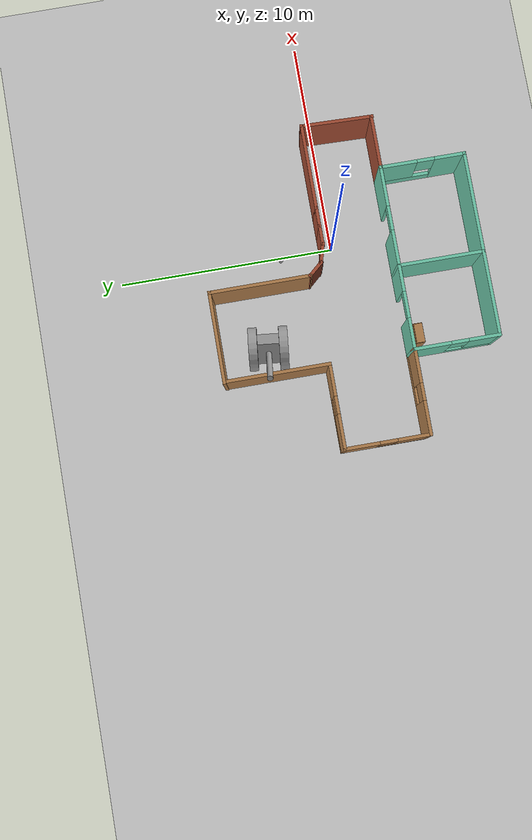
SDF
<sdf version="1.6">
 <world name="default">
  <model name="ground_plane">
   <static>1</static>
   <link name="link">
    <collision name="collision">
     <geometry><plane><normal>0 0 1</normal><size>100 100</size></plane></geometry>
     <surface><friction><ode><mu>100</mu><mu2>50</mu2></ode></friction></surface>
    </collision>
    <visual name="visual">
     <cast_shadows>0</cast_shadows>
     <geometry><plane><normal>0 0 1</normal><size>100 100</size></plane></geometry>
     <material>
      <script><uri>file://media/materials/scripts/gazebo.material</uri><name>Gazebo/Grey</name></script>
     </material>
    </visual>
   </link>
  </model>
  <model name="Building">
   <pose>-2.08469 -0.29841 0 0 -0 0</pose>
   <link name="Wall_1">
    <collision name="Wall_1_Collision">
     <geometry><box><size>4.90441 0.15 2.5</size></box></geometry>
     <pose>0 0 1.25 0 -0 0</pose>
    </collision>
    <visual name="Wall_1_Visual">
     <pose>0 0 1.25 0 -0 0</pose>
     <geometry><box><size>4.90441 0.15 2.5</size></box></geometry>
     <material>
      <script><uri>file://media/materials/scripts/gazebo.material</uri><name>Gazebo/Wood</name></script>
      <ambient>1 1 1 1</ambient>
     </material>
     <meta><layer>0</layer></meta>
    </visual>
    <pose>-3.55458 3.85 0 0 -0 1.5708</pose>
   </link>
   <link name="Wall_10">
    <collision name="Wall_10_Collision">
     <geometry><box><size>1 0.15 2.5</size></box></geometry>
     <pose>0 0 1.25 0 -0 0</pose>
    </collision>
    <visual name="Wall_10_Visual">
     <pose>0 0 1.25 0 -0 0</pose>
     <geometry><box><size>1 0.15 2.5</size></box></geometry>
     <material>
      <script><uri>file://media/materials/scripts/gazebo.material</uri><name>Gazebo/Bricks</name></script>
      <ambient>1 1 1 1</ambient>
     </material>
     <meta><layer>0</layer></meta>
    </visual>
    <pose>1.44206 0.937799 0 0 0 -0.261799</pose>
   </link>
   <link name="Wall_11">
    <collision name="Wall_11_Collision">
     <geometry><box><size>1 0.15 2.5</size></box></geometry>
     <pose>0 0 1.25 0 -0 0</pose>
    </collision>
    <visual name="Wall_11_Visual">
     <pose>0 0 1.25 0 -0 0</pose>
     <geometry><box><size>1 0.15 2.5</size></box></geometry>
     <material>
      <script><uri>file://media/materials/scripts/gazebo.material</uri><name>Gazebo/Bricks</name></script>
      <ambient>1 1 1 1</ambient>
     </material>
     <meta><layer>0</layer></meta>
    </visual>
    <pose>2.27757 0.827801 0 0 -0 0</pose>
   </link>
   <link name="Wall_12">
    <collision name="Wall_12_Collision">
     <geometry><box><size>1 0.15 2.5</size></box></geometry>
     <pose>0 0 1.25 0 -0 0</pose>
    </collision>
    <visual name="Wall_12_Visual">
     <pose>0 0 1.25 0 -0 0</pose>
     <geometry><box><size>1 0.15 2.5</size></box></geometry>
     <material>
      <script><uri>file://media/materials/scripts/gazebo.material</uri><name>Gazebo/Bricks</name></script>
      <ambient>1 1 1 1</ambient>
     </material>
     <meta><layer>0</layer></meta>
    </visual>
    <pose>3.12757 0.827801 0 0 -0 0</pose>
   </link>
   <link name="Wall_14">
    <pose>-5.47959 1.4728 0 0 -0 3.14159</pose>
    <visual name="Wall_14_Visual_0">
     <pose>-1.23073 0 1.25 0 -0 0</pose>
     <geometry><box><size>1.53853 0.15 2.5</size></box></geometry>
     <material>
      <script><uri>file://media/materials/scripts/gazebo.material</uri><name>Gazebo/Wood</name></script>
      <ambient>1 1 1 1</ambient>
     </material>
     <meta><layer>0</layer></meta>
    </visual>
    <collision name="Wall_14_Collision_0">
     <geometry><box><size>1.53853 0.15 2.5</size></box></geometry>
     <pose>-1.23073 0 1.25 0 -0 0</pose>
    </collision>
    <visual name="Wall_14_Visual_1">
     <pose>0.769266 0 0.25 0 -0 0</pose>
     <geometry><box><size>2.46147 0.15 0.5</size></box></geometry>
     <material>
      <script><uri>file://media/materials/scripts/gazebo.material</uri><name>Gazebo/Wood</name></script>
      <ambient>1 1 1 1</ambient>
     </material>
     <meta><layer>0</layer></meta>
    </visual>
    <collision name="Wall_14_Collision_1">
     <geometry><box><size>2.46147 0.15 0.5</size></box></geometry>
     <pose>0.769266 0 0.25 0 -0 0</pose>
    </collision>
    <visual name="Wall_14_Visual_2">
     <pose>1.16927 0 1.5 0 -0 0</pose>
     <geometry><box><size>1.66147 0.15 2</size></box></geometry>
     <material>
      <script><uri>file://media/materials/scripts/gazebo.material</uri><name>Gazebo/Wood</name></script>
      <ambient>1 1 1 1</ambient>
     </material>
     <meta><layer>0</layer></meta>
    </visual>
    <collision name="Wall_14_Collision_2">
     <geometry><box><size>1.66147 0.15 2</size></box></geometry>
     <pose>1.16927 0 1.5 0 -0 0</pose>
    </collision>
    <visual name="Wall_14_Visual_3">
     <pose>-0.061469 0 1.9 0 -0 0</pose>
     <geometry><box><size>0.8 0.15 1.2</size></box></geometry>
     <material>
      <script><uri>file://media/materials/scripts/gazebo.material</uri><name>Gazebo/Wood</name></script>
      <ambient>1 1 1 1</ambient>
     </material>
     <meta><layer>0</layer></meta>
    </visual>
    <collision name="Wall_14_Collision_3">
     <geometry><box><size>0.8 0.15 1.2</size></box></geometry>
     <pose>-0.061469 0 1.9 0 -0 0</pose>
    </collision>
   </link>
   <link name="Wall_15">
    <pose>-7.40458 -0.452203 0 0 0 -1.5708</pose>
    <visual name="Wall_15_Visual_0">
     <pose>-1.17785 0 1.25 0 -0 0</pose>
     <geometry><box><size>1.6443 0.15 2.5</size></box></geometry>
     <material>
      <script><uri>file://media/materials/scripts/gazebo.material</uri><name>Gazebo/Wood</name></script>
      <ambient>1 1 1 1</ambient>
     </material>
     <meta><layer>0</layer></meta>
    </visual>
    <collision name="Wall_15_Collision_0">
     <geometry><box><size>1.6443 0.15 2.5</size></box></geometry>
     <pose>-1.17785 0 1.25 0 -0 0</pose>
    </collision>
    <visual name="Wall_15_Visual_1">
     <pose>0.82215 0 0.25 0 -0 0</pose>
     <geometry><box><size>2.3557 0.15 0.5</size></box></geometry>
     <material>
      <script><uri>file://media/materials/scripts/gazebo.material</uri><name>Gazebo/Wood</name></script>
      <ambient>1 1 1 1</ambient>
     </material>
     <meta><layer>0</layer></meta>
    </visual>
    <collision name="Wall_15_Collision_1">
     <geometry><box><size>2.3557 0.15 0.5</size></box></geometry>
     <pose>0.82215 0 0.25 0 -0 0</pose>
    </collision>
    <visual name="Wall_15_Visual_2">
     <pose>1.22215 0 1.5 0 -0 0</pose>
     <geometry><box><size>1.5557 0.15 2</size></box></geometry>
     <material>
      <script><uri>file://media/materials/scripts/gazebo.material</uri><name>Gazebo/Wood</name></script>
      <ambient>1 1 1 1</ambient>
     </material>
     <meta><layer>0</layer></meta>
    </visual>
    <collision name="Wall_15_Collision_2">
     <geometry><box><size>1.5557 0.15 2</size></box></geometry>
     <pose>1.22215 0 1.5 0 -0 0</pose>
    </collision>
    <visual name="Wall_15_Visual_3">
     <pose>0.044299 0 1.9 0 -0 0</pose>
     <geometry><box><size>0.8 0.15 1.2</size></box></geometry>
     <material>
      <script><uri>file://media/materials/scripts/gazebo.material</uri><name>Gazebo/Wood</name></script>
      <ambient>1 1 1 1</ambient>
     </material>
     <meta><layer>0</layer></meta>
    </visual>
    <collision name="Wall_15_Collision_3">
     <geometry><box><size>0.8 0.15 1.2</size></box></geometry>
     <pose>0.044299 0 1.9 0 -0 0</pose>
    </collision>
   </link>
   <link name="Wall_17">
    <pose>-5.47959 -2.3772 0 0 -0 0</pose>
    <visual name="Wall_17_Visual_0">
     <pose>-1.20425 0 1.25 0 -0 0</pose>
     <geometry><box><size>1.59151 0.15 2.5</size></box></geometry>
     <material>
      <script><uri>file://media/materials/scripts/gazebo.material</uri><name>Gazebo/Wood</name></script>
      <ambient>1 1 1 1</ambient>
     </material>
     <meta><layer>0</layer></meta>
    </visual>
    <collision name="Wall_17_Collision_0">
     <geometry><box><size>1.59151 0.15 2.5</size></box></geometry>
     <pose>-1.20425 0 1.25 0 -0 0</pose>
    </collision>
    <visual name="Wall_17_Visual_1">
     <pose>0.795754 0 0.25 0 -0 0</pose>
     <geometry><box><size>2.40849 0.15 0.5</size></box></geometry>
     <material>
      <script><uri>file://media/materials/scripts/gazebo.material</uri><name>Gazebo/Wood</name></script>
      <ambient>1 1 1 1</ambient>
     </material>
     <meta><layer>0</layer></meta>
    </visual>
    <collision name="Wall_17_Collision_1">
     <geometry><box><size>2.40849 0.15 0.5</size></box></geometry>
     <pose>0.795754 0 0.25 0 -0 0</pose>
    </collision>
    <visual name="Wall_17_Visual_2">
     <pose>1.19575 0 1.5 0 -0 0</pose>
     <geometry><box><size>1.60849 0.15 2</size></box></geometry>
     <material>
      <script><uri>file://media/materials/scripts/gazebo.material</uri><name>Gazebo/Wood</name></script>
      <ambient>1 1 1 1</ambient>
     </material>
     <meta><layer>0</layer></meta>
    </visual>
    <collision name="Wall_17_Collision_2">
     <geometry><box><size>1.60849 0.15 2</size></box></geometry>
     <pose>1.19575 0 1.5 0 -0 0</pose>
    </collision>
    <visual name="Wall_17_Visual_3">
     <pose>-0.008492 0 1.9 0 -0 0</pose>
     <geometry><box><size>0.8 0.15 1.2</size></box></geometry>
     <material>
      <script><uri>file://media/materials/scripts/gazebo.material</uri><name>Gazebo/Wood</name></script>
      <ambient>1 1 1 1</ambient>
     </material>
     <meta><layer>0</layer></meta>
    </visual>
    <collision name="Wall_17_Collision_3">
     <geometry><box><size>0.8 0.15 1.2</size></box></geometry>
     <pose>-0.008492 0 1.9 0 -0 0</pose>
    </collision>
   </link>
   <link name="Wall_19">
    <pose>-3.55458 -4.3022 0 0 0 -1.5708</pose>
    <visual name="Wall_19_Visual_0">
     <pose>-1.13522 0 1.25 0 -0 0</pose>
     <geometry><box><size>1.72956 0.15 2.5</size></box></geometry>
     <material>
      <script><uri>file://media/materials/scripts/gazebo.material</uri><name>Gazebo/Grey</name></script>
      <ambient>0.435294 0.796078 0.67451 1</ambient>
     </material>
     <meta><layer>0</layer></meta>
    </visual>
    <collision name="Wall_19_Collision_0">
     <geometry><box><size>1.72956 0.15 2.5</size></box></geometry>
     <pose>-1.13522 0 1.25 0 -0 0</pose>
    </collision>
    <visual name="Wall_19_Visual_1">
     <pose>0.864782 0 0.25 0 -0 0</pose>
     <geometry><box><size>2.27044 0.15 0.5</size></box></geometry>
     <material>
      <script><uri>file://media/materials/scripts/gazebo.material</uri><name>Gazebo/Grey</name></script>
      <ambient>0.435294 0.796078 0.67451 1</ambient>
     </material>
     <meta><layer>0</layer></meta>
    </visual>
    <collision name="Wall_19_Collision_1">
     <geometry><box><size>2.27044 0.15 0.5</size></box></geometry>
     <pose>0.864782 0 0.25 0 -0 0</pose>
    </collision>
    <visual name="Wall_19_Visual_2">
     <pose>1.26478 0 1.5 0 -0 0</pose>
     <geometry><box><size>1.47044 0.15 2</size></box></geometry>
     <material>
      <script><uri>file://media/materials/scripts/gazebo.material</uri><name>Gazebo/Grey</name></script>
      <ambient>0.435294 0.796078 0.67451 1</ambient>
     </material>
     <meta><layer>0</layer></meta>
    </visual>
    <collision name="Wall_19_Collision_2">
     <geometry><box><size>1.47044 0.15 2</size></box></geometry>
     <pose>1.26478 0 1.5 0 -0 0</pose>
    </collision>
    <visual name="Wall_19_Visual_3">
     <pose>0.129563 0 1.9 0 -0 0</pose>
     <geometry><box><size>0.8 0.15 1.2</size></box></geometry>
     <material>
      <script><uri>file://media/materials/scripts/gazebo.material</uri><name>Gazebo/Grey</name></script>
      <ambient>0.435294 0.796078 0.67451 1</ambient>
     </material>
     <meta><layer>0</layer></meta>
    </visual>
    <collision name="Wall_19_Collision_3">
     <geometry><box><size>0.8 0.15 1.2</size></box></geometry>
     <pose>0.129563 0 1.9 0 -0 0</pose>
    </collision>
   </link>
   <link name="Wall_20">
    <collision name="Wall_20_Collision">
     <geometry><box><size>4 0.15 2.5</size></box></geometry>
     <pose>0 0 1.25 0 -0 0</pose>
    </collision>
    <visual name="Wall_20_Visual">
     <pose>0 0 1.25 0 -0 0</pose>
     <geometry><box><size>4 0.15 2.5</size></box></geometry>
     <material>
      <script><uri>file://media/materials/scripts/gazebo.material</uri><name>Gazebo/Grey</name></script>
      <ambient>0.435294 0.796078 0.67451 1</ambient>
     </material>
     <meta><layer>0</layer></meta>
    </visual>
    <pose>-1.62959 -6.2272 0 0 -0 0</pose>
   </link>
   <link name="Wall_21">
    <collision name="Wall_21_Collision">
     <geometry><box><size>4 0.15 2.5</size></box></geometry>
     <pose>0 0 1.25 0 -0 0</pose>
    </collision>
    <visual name="Wall_21_Visual">
     <pose>0 0 1.25 0 -0 0</pose>
     <geometry><box><size>4 0.15 2.5</size></box></geometry>
     <material>
      <script><uri>file://media/materials/scripts/gazebo.material</uri><name>Gazebo/Grey</name></script>
      <ambient>0.435294 0.796078 0.67451 1</ambient>
     </material>
     <meta><layer>0</layer></meta>
    </visual>
    <pose>0.295415 -4.3022 0 0 -0 1.5708</pose>
   </link>
   <link name="Wall_23">
    <collision name="Wall_23_Collision">
     <geometry><box><size>4.75 0.15 2.5</size></box></geometry>
     <pose>0 0 1.25 0 -0 0</pose>
    </collision>
    <visual name="Wall_23_Visual">
     <pose>0 0 1.25 0 -0 0</pose>
     <geometry><box><size>4.75 0.15 2.5</size></box></geometry>
     <material>
      <script><uri>file://media/materials/scripts/gazebo.material</uri><name>Gazebo/Grey</name></script>
      <ambient>0.435294 0.796078 0.67451 1</ambient>
     </material>
     <meta><layer>0</layer></meta>
    </visual>
    <pose>2.59542 -6.2272 0 0 -0 0</pose>
   </link>
   <link name="Wall_24">
    <pose>4.89541 -4.3022 0 0 -0 1.5708</pose>
    <visual name="Wall_24_Visual_0">
     <pose>-1.27353 0 1.25 0 -0 0</pose>
     <geometry><box><size>1.45295 0.15 2.5</size></box></geometry>
     <material>
      <script><uri>file://media/materials/scripts/gazebo.material</uri><name>Gazebo/Grey</name></script>
      <ambient>0.435294 0.796078 0.67451 1</ambient>
     </material>
     <meta><layer>0</layer></meta>
    </visual>
    <collision name="Wall_24_Collision_0">
     <geometry><box><size>1.45295 0.15 2.5</size></box></geometry>
     <pose>-1.27353 0 1.25 0 -0 0</pose>
    </collision>
    <visual name="Wall_24_Visual_1">
     <pose>0.726473 0 0.25 0 -0 0</pose>
     <geometry><box><size>2.54705 0.15 0.5</size></box></geometry>
     <material>
      <script><uri>file://media/materials/scripts/gazebo.material</uri><name>Gazebo/Grey</name></script>
      <ambient>0.435294 0.796078 0.67451 1</ambient>
     </material>
     <meta><layer>0</layer></meta>
    </visual>
    <collision name="Wall_24_Collision_1">
     <geometry><box><size>2.54705 0.15 0.5</size></box></geometry>
     <pose>0.726473 0 0.25 0 -0 0</pose>
    </collision>
    <visual name="Wall_24_Visual_2">
     <pose>1.12647 0 1.5 0 -0 0</pose>
     <geometry><box><size>1.74705 0.15 2</size></box></geometry>
     <material>
      <script><uri>file://media/materials/scripts/gazebo.material</uri><name>Gazebo/Grey</name></script>
      <ambient>0.435294 0.796078 0.67451 1</ambient>
     </material>
     <meta><layer>0</layer></meta>
    </visual>
    <collision name="Wall_24_Collision_2">
     <geometry><box><size>1.74705 0.15 2</size></box></geometry>
     <pose>1.12647 0 1.5 0 -0 0</pose>
    </collision>
    <visual name="Wall_24_Visual_3">
     <pose>-0.147053 0 1.9 0 -0 0</pose>
     <geometry><box><size>0.8 0.15 1.2</size></box></geometry>
     <material>
      <script><uri>file://media/materials/scripts/gazebo.material</uri><name>Gazebo/Grey</name></script>
      <ambient>0.435294 0.796078 0.67451 1</ambient>
     </material>
     <meta><layer>0</layer></meta>
    </visual>
    <collision name="Wall_24_Collision_3">
     <geometry><box><size>0.8 0.15 1.2</size></box></geometry>
     <pose>-0.147053 0 1.9 0 -0 0</pose>
    </collision>
   </link>
   <link name="Wall_25">
    <collision name="Wall_25_Collision">
     <geometry><box><size>2.56935 0.15 2.5</size></box></geometry>
     <pose>0 0 1.25 0 -0 0</pose>
    </collision>
    <visual name="Wall_25_Visual">
     <pose>0 0 1.25 0 -0 0</pose>
     <geometry><box><size>2.56935 0.15 2.5</size></box></geometry>
     <material>
      <script><uri>file://media/materials/scripts/gazebo.material</uri><name>Gazebo/Bricks</name></script>
      <ambient>1 1 1 1</ambient>
     </material>
     <meta><layer>0</layer></meta>
    </visual>
    <pose>6.10502 -2.3772 0 0 -0 0</pose>
   </link>
   <link name="Wall_26">
    <collision name="Wall_26_Collision">
     <geometry><box><size>3.3828 0.15 2.5</size></box></geometry>
     <pose>0 0 1.25 0 -0 0</pose>
    </collision>
    <visual name="Wall_26_Visual">
     <pose>0 0 1.25 0 -0 0</pose>
     <geometry><box><size>3.3828 0.15 2.5</size></box></geometry>
     <material>
      <script><uri>file://media/materials/scripts/gazebo.material</uri><name>Gazebo/Bricks</name></script>
      <ambient>1 1 1 1</ambient>
     </material>
     <meta><layer>0</layer></meta>
    </visual>
    <pose>7.3586 -0.788001 0 0 -0 1.54359</pose>
   </link>
   <link name="Wall_27">
    <collision name="Wall_27_Collision">
     <geometry><box><size>0.15 0.15 2.5</size></box></geometry>
     <pose>0 0 1.25 0 -0 0</pose>
    </collision>
    <visual name="Wall_27_Visual">
     <pose>0 0 1.25 0 -0 0</pose>
     <geometry><box><size>0.15 0.15 2.5</size></box></geometry>
     <material>
      <script><uri>file://media/materials/scripts/gazebo.material</uri><name>Gazebo/Grey</name></script>
      <ambient>1 1 1 1</ambient>
     </material>
     <meta><layer>0</layer></meta>
    </visual>
    <pose>7.40257 0.827801 0 0 -0 0</pose>
   </link>
   <link name="Wall_29">
    <collision name="Wall_29_Collision">
     <geometry><box><size>4 0.15 2.5</size></box></geometry>
     <pose>0 0 1.25 0 -0 0</pose>
    </collision>
    <visual name="Wall_29_Visual">
     <pose>0 0 1.25 0 -0 0</pose>
     <geometry><box><size>4 0.15 2.5</size></box></geometry>
     <material>
      <script><uri>file://media/materials/scripts/gazebo.material</uri><name>Gazebo/Bricks</name></script>
      <ambient>1 1 1 1</ambient>
     </material>
     <meta><layer>0</layer></meta>
    </visual>
    <pose>5.47757 0.827801 0 0 -0 0</pose>
   </link>
   <link name="Wall_31">
    <pose>0.670415 -2.3772 0 0 -0 0</pose>
    <visual name="Wall_31_Visual_0">
     <pose>-3.54346 0 1.25 0 -0 0</pose>
     <geometry><box><size>1.51309 0.15 2.5</size></box></geometry>
     <material>
      <script><uri>file://media/materials/scripts/gazebo.material</uri><name>Gazebo/Grey</name></script>
      <ambient>0.435294 0.796078 0.67451 1</ambient>
     </material>
     <meta><layer>0</layer></meta>
    </visual>
    <collision name="Wall_31_Collision_0">
     <geometry><box><size>1.51309 0.15 2.5</size></box></geometry>
     <pose>-3.54346 0 1.25 0 -0 0</pose>
    </collision>
    <visual name="Wall_31_Visual_1">
     <pose>-0.150655 0 1.25 0 -0 0</pose>
     <geometry><box><size>2.84287 0.15 2.5</size></box></geometry>
     <material>
      <script><uri>file://media/materials/scripts/gazebo.material</uri><name>Gazebo/Grey</name></script>
      <ambient>0.435294 0.796078 0.67451 1</ambient>
     </material>
     <meta><layer>0</layer></meta>
    </visual>
    <collision name="Wall_31_Collision_1">
     <geometry><box><size>2.84287 0.15 2.5</size></box></geometry>
     <pose>-0.150655 0 1.25 0 -0 0</pose>
    </collision>
    <visual name="Wall_31_Visual_2">
     <pose>3.34908 0 1.25 0 -0 0</pose>
     <geometry><box><size>1.90185 0.15 2.5</size></box></geometry>
     <material>
      <script><uri>file://media/materials/scripts/gazebo.material</uri><name>Gazebo/Grey</name></script>
      <ambient>0.435294 0.796078 0.67451 1</ambient>
     </material>
     <meta><layer>0</layer></meta>
    </visual>
    <collision name="Wall_31_Collision_2">
     <geometry><box><size>1.90185 0.15 2.5</size></box></geometry>
     <pose>3.34908 0 1.25 0 -0 0</pose>
    </collision>
    <visual name="Wall_31_Visual_3">
     <pose>-2.1795 0 2.25 0 -0 0</pose>
     <geometry><box><size>1.21482 0.15 0.5</size></box></geometry>
     <material>
      <script><uri>file://media/materials/scripts/gazebo.material</uri><name>Gazebo/Grey</name></script>
      <ambient>0.435294 0.796078 0.67451 1</ambient>
     </material>
     <meta><layer>0</layer></meta>
    </visual>
    <collision name="Wall_31_Collision_3">
     <geometry><box><size>1.21482 0.15 0.5</size></box></geometry>
     <pose>-2.1795 0 2.25 0 -0 0</pose>
    </collision>
    <visual name="Wall_31_Visual_4">
     <pose>1.83447 0 2.25 0 -0 0</pose>
     <geometry><box><size>1.12737 0.15 0.5</size></box></geometry>
     <material>
      <script><uri>file://media/materials/scripts/gazebo.material</uri><name>Gazebo/Grey</name></script>
      <ambient>0.435294 0.796078 0.67451 1</ambient>
     </material>
     <meta><layer>0</layer></meta>
    </visual>
    <collision name="Wall_31_Collision_4">
     <geometry><box><size>1.12737 0.15 0.5</size></box></geometry>
     <pose>1.83447 0 2.25 0 -0 0</pose>
    </collision>
   </link>
   <link name="Wall_6">
    <collision name="Wall_6_Collision">
     <geometry><box><size>4.25 0.15 2.5</size></box></geometry>
     <pose>0 0 1.25 0 -0 0</pose>
    </collision>
    <visual name="Wall_6_Visual">
     <pose>0 0 1.25 0 -0 0</pose>
     <geometry><box><size>4.25 0.15 2.5</size></box></geometry>
     <material>
      <script><uri>file://media/materials/scripts/gazebo.material</uri><name>Gazebo/Wood</name></script>
      <ambient>1 1 1 1</ambient>
     </material>
     <meta><layer>0</layer></meta>
    </visual>
    <pose>-1.53119 6.2272 0 0 -0 3.14159</pose>
   </link>
   <link name="Wall_8">
    <collision name="Wall_8_Collision">
     <geometry><box><size>4.75 0.15 2.5</size></box></geometry>
     <pose>0 0 1.25 0 -0 0</pose>
    </collision>
    <visual name="Wall_8_Visual">
     <pose>0 0 1.25 0 -0 0</pose>
     <geometry><box><size>4.75 0.15 2.5</size></box></geometry>
     <material>
      <script><uri>file://media/materials/scripts/gazebo.material</uri><name>Gazebo/Wood</name></script>
      <ambient>1 1 1 1</ambient>
     </material>
     <meta><layer>0</layer></meta>
    </visual>
    <pose>0.518814 3.9272 0 0 0 -1.5708</pose>
   </link>
   <link name="Wall_9">
    <collision name="Wall_9_Collision">
     <geometry><box><size>0.92369 0.15 2.5</size></box></geometry>
     <pose>0 0 1.25 0 -0 0</pose>
    </collision>
    <visual name="Wall_9_Visual">
     <pose>0 0 1.25 0 -0 0</pose>
     <geometry><box><size>0.92369 0.15 2.5</size></box></geometry>
     <material>
      <script><uri>file://media/materials/scripts/gazebo.material</uri><name>Gazebo/Bricks</name></script>
      <ambient>1 1 1 1</ambient>
     </material>
     <meta><layer>0</layer></meta>
    </visual>
    <pose>0.775175 1.3375 0 0 0 -0.846382</pose>
   </link>
   <static>1</static>
  </model>
  <model name="robot_0">
   <link name="link_2">
    <pose>0.001415 0.001415 -0.407495 0 -0 0</pose>
    <inertial>
     <mass>1</mass>
     <inertia>
      <ixx>0.166667</ixx>
      <ixy>0</ixy>
      <ixz>0</ixz>
      <iyy>0.166667</iyy>
      <iyz>0</iyz>
      <izz>0.166667</izz>
     </inertia>
    </inertial>
    <visual name="visual">
     <geometry><box><size>1 1 1</size></box></geometry>
     <material>
      <lighting>1</lighting>
      <script><uri>file://media/materials/scripts/gazebo.material</uri><name>Gazebo/Grey</name></script>
      <shader type="pixel"><normal_map>__default__</normal_map></shader>
      <ambient>0.3 0.3 0.3 1</ambient>
      <diffuse>0.7 0.7 0.7 1</diffuse>
      <specular>0.01 0.01 0.01 1</specular>
      <emissive>0 0 0 1</emissive>
     </material>
    </visual>
    <collision name="collision">
     <geometry><box><size>1 1 1</size></box></geometry>
     <surface>
      <friction>
       <ode><mu>1</mu><mu2>1</mu2><fdir1>0 0 0</fdir1><slip1>0</slip1><slip2>0</slip2></ode>
       <torsional>
        <coefficient>1</coefficient>
        <patch_radius>0</patch_radius>
        <surface_radius>0</surface_radius>
        <use_patch_radius>1</use_patch_radius>
        <ode><slip>0</slip></ode>
       </torsional>
      </friction>
      <bounce><restitution_coefficient>0</restitution_coefficient><threshold>1e+06</threshold></bounce>
      <contact>
       <collide_without_contact>0</collide_without_contact>
       <collide_without_contact_bitmask>1</collide_without_contact_bitmask>
       <collide_bitmask>1</collide_bitmask>
       <ode>
        <soft_cfm>0</soft_cfm>
        <soft_erp>0.2</soft_erp>
        <kp>1e+13</kp>
        <kd>1</kd>
        <max_vel>0.01</max_vel>
        <min_depth>0</min_depth>
       </ode>
       <bullet>
        <split_impulse>1</split_impulse>
        <split_impulse_penetration_threshold>-0.01</split_impulse_penetration_threshold>
        <soft_cfm>0</soft_cfm>
        <soft_erp>0.2</soft_erp>
        <kp>1e+13</kp>
        <kd>1</kd>
       </bullet>
      </contact>
     </surface>
    </collision>
   </link>
   <link name="link_4">
    <pose>0.001415 -0.698682 -0.407495 1.5707 -0 0</pose>
    <inertial>
     <mass>1</mass>
     <inertia><ixx>0.145833</ixx><ixy>0</ixy><ixz>0</ixz><iyy>0.145833</iyy><iyz>0</iyz><izz>0.125</izz></inertia>
    </inertial>
    <visual name="visual">
     <geometry><cylinder><radius>1</radius><length>0.4</length></cylinder></geometry>
     <material>
      <lighting>1</lighting>
      <script><uri>file://media/materials/scripts/gazebo.material</uri><name>Gazebo/Grey</name></script>
      <shader type="pixel"><normal_map>__default__</normal_map></shader>
      <ambient>0.3 0.3 0.3 1</ambient>
      <diffuse>0.7 0.7 0.7 1</diffuse>
      <specular>0.01 0.01 0.01 1</specular>
      <emissive>0 0 0 1</emissive>
     </material>
    </visual>
    <collision name="collision">
     <geometry><cylinder><radius>1</radius><length>0.4</length></cylinder></geometry>
     <surface>
      <friction>
       <ode><mu>1</mu><mu2>1</mu2><fdir1>0 0 0</fdir1><slip1>0</slip1><slip2>0</slip2></ode>
       <torsional>
        <coefficient>1</coefficient>
        <patch_radius>0</patch_radius>
        <surface_radius>0</surface_radius>
        <use_patch_radius>1</use_patch_radius>
        <ode><slip>0</slip></ode>
       </torsional>
      </friction>
      <bounce><restitution_coefficient>0</restitution_coefficient><threshold>1e+06</threshold></bounce>
      <contact>
       <collide_without_contact>0</collide_without_contact>
       <collide_without_contact_bitmask>1</collide_without_contact_bitmask>
       <collide_bitmask>1</collide_bitmask>
       <ode>
        <soft_cfm>0</soft_cfm>
        <soft_erp>0.2</soft_erp>
        <kp>1e+13</kp>
        <kd>1</kd>
        <max_vel>0.01</max_vel>
        <min_depth>0</min_depth>
       </ode>
       <bullet>
        <split_impulse>1</split_impulse>
        <split_impulse_penetration_threshold>-0.01</split_impulse_penetration_threshold>
        <soft_cfm>0</soft_cfm>
        <soft_erp>0.2</soft_erp>
        <kp>1e+13</kp>
        <kd>1</kd>
       </bullet>
      </contact>
     </surface>
    </collision>
   </link>
   <link name="link_4_clone">
    <pose>0.001415 0.701511 -0.407495 1.5707 -0 0</pose>
    <inertial>
     <mass>1</mass>
     <inertia><ixx>0.145833</ixx><ixy>0</ixy><ixz>0</ixz><iyy>0.145833</iyy><iyz>0</iyz><izz>0.125</izz></inertia>
    </inertial>
    <visual name="visual">
     <geometry><cylinder><radius>1</radius><length>0.4</length></cylinder></geometry>
     <material>
      <lighting>1</lighting>
      <script><uri>file://media/materials/scripts/gazebo.material</uri><name>Gazebo/Grey</name></script>
      <shader type="pixel"><normal_map>__default__</normal_map></shader>
      <ambient>0.3 0.3 0.3 1</ambient>
      <diffuse>0.7 0.7 0.7 1</diffuse>
      <specular>0.01 0.01 0.01 1</specular>
      <emissive>0 0 0 1</emissive>
     </material>
    </visual>
    <collision name="collision">
     <geometry><cylinder><radius>1</radius><length>0.4</length></cylinder></geometry>
     <surface>
      <friction>
       <ode><mu>1</mu><mu2>1</mu2><fdir1>0 0 0</fdir1><slip1>0</slip1><slip2>0</slip2></ode>
       <torsional>
        <coefficient>1</coefficient>
        <patch_radius>0</patch_radius>
        <surface_radius>0</surface_radius>
        <use_patch_radius>1</use_patch_radius>
        <ode><slip>0</slip></ode>
       </torsional>
      </friction>
      <bounce><restitution_coefficient>0</restitution_coefficient><threshold>1e+06</threshold></bounce>
      <contact>
       <collide_without_contact>0</collide_without_contact>
       <collide_without_contact_bitmask>1</collide_without_contact_bitmask>
       <collide_bitmask>1</collide_bitmask>
       <ode>
        <soft_cfm>0</soft_cfm>
        <soft_erp>0.2</soft_erp>
        <kp>1e+13</kp>
        <kd>1</kd>
        <max_vel>0.01</max_vel>
        <min_depth>0</min_depth>
       </ode>
       <bullet>
        <split_impulse>1</split_impulse>
        <split_impulse_penetration_threshold>-0.01</split_impulse_penetration_threshold>
        <soft_cfm>0</soft_cfm>
        <soft_erp>0.2</soft_erp>
        <kp>1e+13</kp>
        <kd>1</kd>
       </bullet>
      </contact>
     </surface>
    </collision>
   </link>
   <link name="link_6">
    <pose>-0.004244 -0.004244 1.22248 0 -0 0</pose>
    <inertial>
     <mass>0.149694</mass>
     <inertia>
      <ixx>0.0643321</ixx>
      <ixy>0</ixy>
      <ixz>0</ixz>
      <iyy>0.0643321</iyy>
      <iyz>0</iyz>
      <izz>0.00123941</izz>
     </inertia>
    </inertial>
    <visual name="visual">
     <geometry><cylinder><radius>0.128683</radius><length>2.25996</length></cylinder></geometry>
     <material>
      <lighting>1</lighting>
      <script><uri>file://media/materials/scripts/gazebo.material</uri><name>Gazebo/Grey</name></script>
      <shader type="pixel"/>
      <ambient>0.3 0.3 0.3 1</ambient>
      <diffuse>0.7 0.7 0.7 1</diffuse>
      <specular>0.01 0.01 0.01 1</specular>
      <emissive>0 0 0 1</emissive>
     </material>
    </visual>
    <collision name="collision">
     <geometry><cylinder><radius>0.128683</radius><length>2.25996</length></cylinder></geometry>
     <surface>
      <friction>
       <ode><mu>1</mu><mu2>1</mu2><fdir1>0 0 0</fdir1><slip1>0</slip1><slip2>0</slip2></ode>
       <torsional>
        <coefficient>1</coefficient>
        <patch_radius>0</patch_radius>
        <surface_radius>0</surface_radius>
        <use_patch_radius>1</use_patch_radius>
        <ode><slip>0</slip></ode>
       </torsional>
      </friction>
      <bounce><restitution_coefficient>0</restitution_coefficient><threshold>1e+06</threshold></bounce>
      <contact>
       <collide_without_contact>0</collide_without_contact>
       <collide_without_contact_bitmask>1</collide_without_contact_bitmask>
       <collide_bitmask>1</collide_bitmask>
       <ode>
        <soft_cfm>0</soft_cfm>
        <soft_erp>0.2</soft_erp>
        <kp>1e+13</kp>
        <kd>1</kd>
        <max_vel>0.01</max_vel>
        <min_depth>0</min_depth>
       </ode>
       <bullet>
        <split_impulse>1</split_impulse>
        <split_impulse_penetration_threshold>-0.01</split_impulse_penetration_threshold>
        <soft_cfm>0</soft_cfm>
        <soft_erp>0.2</soft_erp>
        <kp>1e+13</kp>
        <kd>1</kd>
       </bullet>
      </contact>
     </surface>
    </collision>
   </link>
   <joint name="link_2_JOINT_0" type="revolute">
    <parent>link_2</parent>
    <child>link_4</child>
    <axis>
     <xyz>1 0 0</xyz>
     <use_parent_model_frame>0</use_parent_model_frame>
     <limit>
      <lower>-1.79769e+308</lower>
      <upper>1.79769e+308</upper>
      <effort>-1</effort>
      <velocity>-1</velocity>
     </limit>
     <dynamics>
      <spring_reference>0</spring_reference>
      <spring_stiffness>0</spring_stiffness>
      <damping>0</damping>
     </dynamics>
    </axis>
    <physics>
     <ode><limit><cfm>0</cfm><erp>0.2</erp></limit><suspension><cfm>0</cfm><erp>0.2</erp></suspension></ode>
    </physics>
   </joint>
   <joint name="link_2_JOINT_1" type="revolute">
    <parent>link_2</parent>
    <child>link_4_clone</child>
    <axis>
     <xyz>1 0 0</xyz>
     <use_parent_model_frame>0</use_parent_model_frame>
     <limit>
      <lower>-1.79769e+308</lower>
      <upper>1.79769e+308</upper>
      <effort>-1</effort>
      <velocity>-1</velocity>
     </limit>
     <dynamics>
      <spring_reference>0</spring_reference>
      <spring_stiffness>0</spring_stiffness>
      <damping>0</damping>
     </dynamics>
    </axis>
    <physics>
     <ode><limit><cfm>0</cfm><erp>0.2</erp></limit><suspension><cfm>0</cfm><erp>0.2</erp></suspension></ode>
    </physics>
   </joint>
   <joint name="link_2_JOINT_2" type="fixed">
    <parent>link_2</parent>
    <child>link_6</child>
    <pose>0 0 0 0 -0.03 0</pose>
    <physics>
     <ode><limit><cfm>0</cfm><erp>0.2</erp></limit><suspension><cfm>0</cfm><erp>0.2</erp></suspension></ode>
    </physics>
   </joint>
   <static>0</static>
   <pose>-4.51938 3.7511 1.32531 0.000818 -0.64474 -0.106339</pose>
  </model>
  <model name="bookshelf_3">
   <static>1</static>
   <link name="link">
    <inertial><mass>1</mass></inertial>
    <collision name="back">
     <pose>0 0.005 0.6 0 -0 0</pose>
     <geometry><box><size>0.9 0.01 1.2</size></box></geometry>
    </collision>
    <visual name="visual1">
     <pose>0 0.005 0.6 0 -0 0</pose>
     <geometry><box><size>0.9 0.01 1.2</size></box></geometry>
     <material>
      <script><uri>file://media/materials/scripts/gazebo.material</uri><name>Gazebo/Wood</name></script>
     </material>
    </visual>
    <collision name="left_side">
     <pose>0.45 -0.195 0.6 0 -0 0</pose>
     <geometry><box><size>0.02 0.4 1.2</size></box></geometry>
    </collision>
    <visual name="visual2">
     <pose>0.45 -0.195 0.6 0 -0 0</pose>
     <geometry><box><size>0.02 0.4 1.2</size></box></geometry>
     <material>
      <script><uri>file://media/materials/scripts/gazebo.material</uri><name>Gazebo/Wood</name></script>
     </material>
    </visual>
    <collision name="right_side">
     <pose>-0.45 -0.195 0.6 0 -0 0</pose>
     <geometry><box><size>0.02 0.4 1.2</size></box></geometry>
    </collision>
    <visual name="visual3">
     <pose>-0.45 -0.195 0.6 0 -0 0</pose>
     <geometry><box><size>0.02 0.4 1.2</size></box></geometry>
     <material>
      <script><uri>file://media/materials/scripts/gazebo.material</uri><name>Gazebo/Wood</name></script>
     </material>
    </visual>
    <collision name="bottom">
     <pose>0 -0.195 0.03 0 -0 0</pose>
     <geometry><box><size>0.88 0.4 0.06</size></box></geometry>
    </collision>
    <visual name="visual4">
     <pose>0 -0.195 0.03 0 -0 0</pose>
     <geometry><box><size>0.88 0.4 0.06</size></box></geometry>
     <material>
      <script><uri>file://media/materials/scripts/gazebo.material</uri><name>Gazebo/Wood</name></script>
     </material>
    </visual>
    <collision name="top">
     <pose>0 -0.195 1.19 0 -0 0</pose>
     <geometry><box><size>0.88 0.4 0.02</size></box></geometry>
    </collision>
    <visual name="visual5">
     <pose>0 -0.195 1.19 0 -0 0</pose>
     <geometry><box><size>0.88 0.4 0.02</size></box></geometry>
     <material>
      <script><uri>file://media/materials/scripts/gazebo.material</uri><name>Gazebo/Wood</name></script>
     </material>
    </visual>
    <collision name="low_shelf">
     <pose>0 -0.195 0.43 0 -0 0</pose>
     <geometry><box><size>0.88 0.4 0.02</size></box></geometry>
    </collision>
    <visual name="visual6">
     <pose>0 -0.195 0.43 0 -0 0</pose>
     <geometry><box><size>0.88 0.4 0.02</size></box></geometry>
     <material>
      <script><uri>file://media/materials/scripts/gazebo.material</uri><name>Gazebo/Wood</name></script>
     </material>
    </visual>
    <collision name="high_shelf">
     <pose>0 -0.195 0.8 0 -0 0</pose>
     <geometry><box><size>0.88 0.4 0.02</size></box></geometry>
    </collision>
    <visual name="visual7">
     <pose>0 -0.195 0.8 0 -0 0</pose>
     <geometry><box><size>0.88 0.4 0.02</size></box></geometry>
     <material>
      <script><uri>file://media/materials/scripts/gazebo.material</uri><name>Gazebo/Wood</name></script>
     </material>
    </visual>
   </link>
   <pose>-4.77217 -3.01429 0 0 -0 0</pose>
  </model>
  <model name="my_ball">
   <link name="link_0_clone">
    <pose>12.9253 0.75155 0.2 0 -0 0</pose>
    <inertial>
     <mass>1</mass>
     <inertia><ixx>0.1</ixx><ixy>0</ixy><ixz>0</ixz><iyy>0.1</iyy><iyz>0</iyz><izz>0.1</izz></inertia>
    </inertial>
    <visual name="visual">
     <geometry><sphere><radius>0.1</radius></sphere></geometry>
     <material>
      <lighting>1</lighting>
      <script><uri>file://media/materials/scripts/gazebo.material</uri><name>Gazebo/Grey</name></script>
      <shader type="pixel"><normal_map>__default__</normal_map></shader>
      <ambient>0.3 0.3 0.3 1</ambient>
      <diffuse>0.7 0.7 0.7 1</diffuse>
      <specular>0.01 0.01 0.01 1</specular>
      <emissive>0 0 0 1</emissive>
     </material>
    </visual>
    <collision name="collision">
     <geometry><sphere><radius>0.1</radius></sphere></geometry>
     <surface>
      <friction>
       <ode><mu>1</mu><mu2>1</mu2><fdir1>0 0 0</fdir1><slip1>0</slip1><slip2>0</slip2></ode>
       <torsional>
        <coefficient>1</coefficient>
        <patch_radius>0</patch_radius>
        <surface_radius>0</surface_radius>
        <use_patch_radius>1</use_patch_radius>
        <ode><slip>0</slip></ode>
       </torsional>
      </friction>
      <bounce><restitution_coefficient>0</restitution_coefficient><threshold>1e+06</threshold></bounce>
      <contact>
       <collide_without_contact>0</collide_without_contact>
       <collide_without_contact_bitmask>1</collide_without_contact_bitmask>
       <collide_bitmask>1</collide_bitmask>
       <ode>
        <soft_cfm>0</soft_cfm>
        <soft_erp>0.2</soft_erp>
        <kp>1e+13</kp>
        <kd>1</kd>
        <max_vel>0.01</max_vel>
        <min_depth>0</min_depth>
       </ode>
       <bullet>
        <split_impulse>1</split_impulse>
        <split_impulse_penetration_threshold>-0.01</split_impulse_penetration_threshold>
        <soft_cfm>0</soft_cfm>
        <soft_erp>0.2</soft_erp>
        <kp>1e+13</kp>
        <kd>1</kd>
       </bullet>
      </contact>
     </surface>
    </collision>
   </link>
   <link name="link_0_clone_0">
    <pose>-12.9253 -0.75155 -0.2 0 -0 0</pose>
    <inertial>
     <mass>1</mass>
     <inertia><ixx>0.1</ixx><ixy>0</ixy><ixz>0</ixz><iyy>0.1</iyy><iyz>0</iyz><izz>0.1</izz></inertia>
    </inertial>
    <visual name="visual">
     <geometry><sphere><radius>0.1</radius></sphere></geometry>
     <material>
      <lighting>1</lighting>
      <script><uri>file://media/materials/scripts/gazebo.material</uri><name>Gazebo/Grey</name></script>
      <shader type="pixel"><normal_map>__default__</normal_map></shader>
      <ambient>1 1 1 1</ambient>
      <diffuse>1 1 1 1</diffuse>
      <specular>1 1 1 1</specular>
      <emissive>1 1 1 1</emissive>
     </material>
    </visual>
    <collision name="collision">
     <geometry><sphere><radius>0.1</radius></sphere></geometry>
     <surface>
      <friction>
       <ode><mu>1</mu><mu2>1</mu2><fdir1>0 0 0</fdir1><slip1>0</slip1><slip2>0</slip2></ode>
       <torsional>
        <coefficient>1</coefficient>
        <patch_radius>0</patch_radius>
        <surface_radius>0</surface_radius>
        <use_patch_radius>1</use_patch_radius>
        <ode><slip>0</slip></ode>
       </torsional>
      </friction>
      <bounce><restitution_coefficient>0</restitution_coefficient><threshold>1e+06</threshold></bounce>
      <contact>
       <collide_without_contact>0</collide_without_contact>
       <collide_without_contact_bitmask>1</collide_without_contact_bitmask>
       <collide_bitmask>1</collide_bitmask>
       <ode>
        <soft_cfm>0</soft_cfm>
        <soft_erp>0.2</soft_erp>
        <kp>1e+13</kp>
        <kd>1</kd>
        <max_vel>0.01</max_vel>
        <min_depth>0</min_depth>
       </ode>
       <bullet>
        <split_impulse>1</split_impulse>
        <split_impulse_penetration_threshold>-0.01</split_impulse_penetration_threshold>
        <soft_cfm>0</soft_cfm>
        <soft_erp>0.2</soft_erp>
        <kp>1e+13</kp>
        <kd>1</kd>
       </bullet>
      </contact>
     </surface>
    </collision>
   </link>
   <static>0</static>
   <pose>-13.038 1.6791 -0.1 0 -0 0</pose>
  </model>
 </world>
</sdf>
